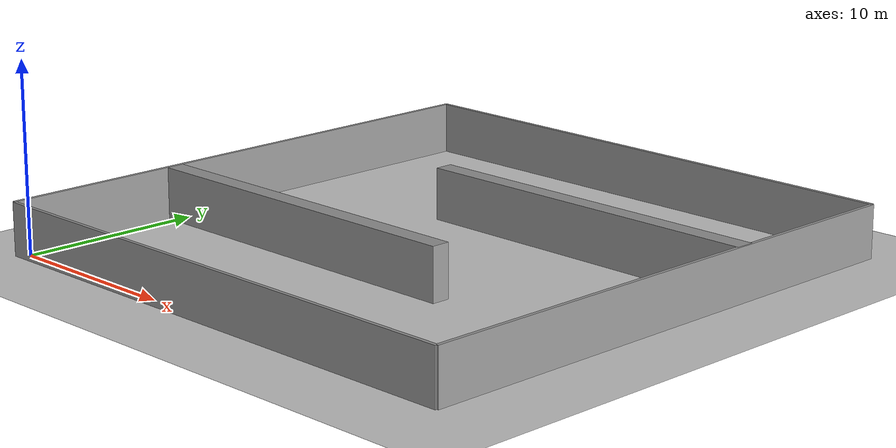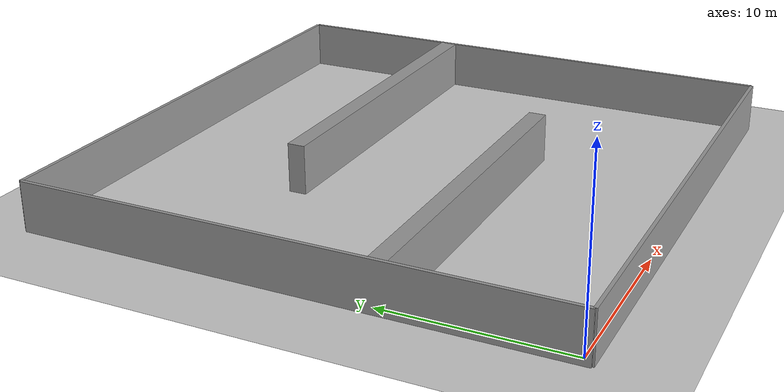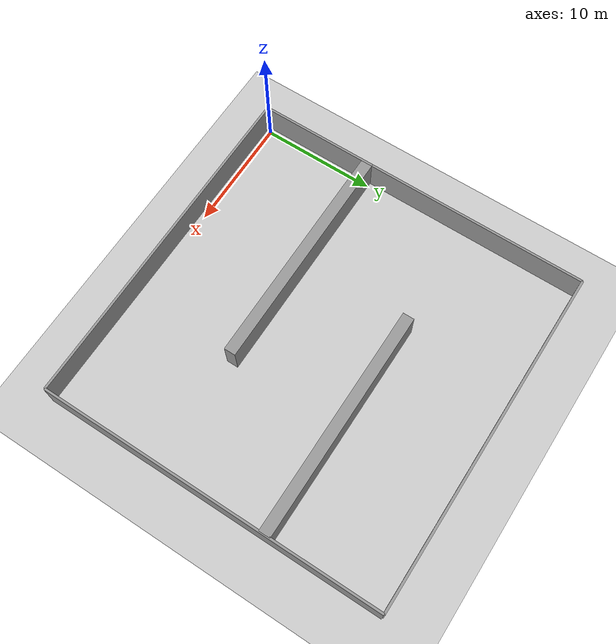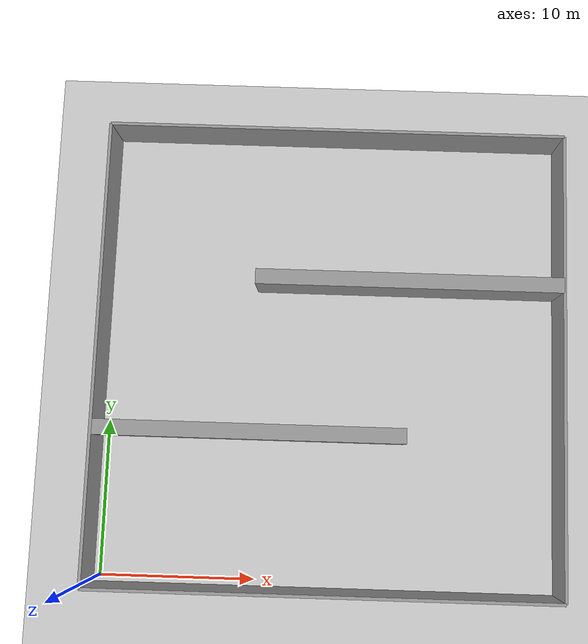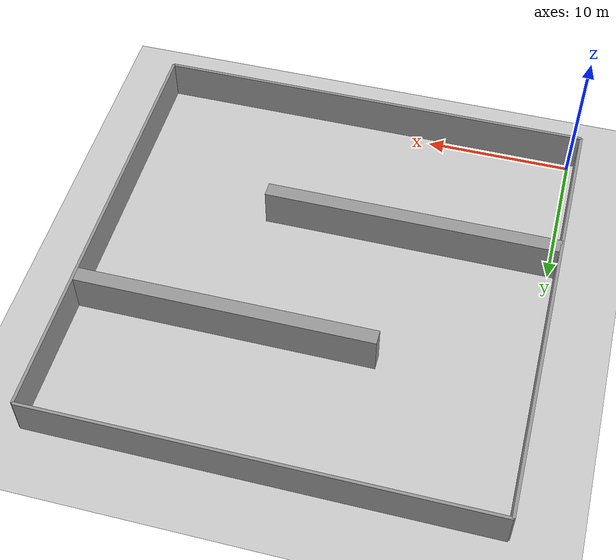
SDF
<?xml version="1.0" ?>

    <!-- this file is auto generated using pedsim_gazebo_plugin pkg -->
    <sdf version="1.5">
      <world name="default">

      <!-- Ground Plane -->

      <include>
        <uri>model://ground_plane</uri>
      </include>

      <include>
        <uri>model://sun</uri>
      </include>

     <model name='grey_wall_1'>
      <static>1</static>
      <link name='link'>

	  <pose frame=''>14.5 -0.5  1.4 0 0 0.0</pose>

        <collision name='collision'>
          <geometry>
            <box>

	     <size> 30.0 .2  2.8 </size>

      	   </box>
          </geometry>
          <max_contacts>10</max_contacts>
          <surface>
            <contact>
              <ode/>
            </contact>
            <bounce/>
            <friction>
              <torsional>
                <ode/>
              </torsional>
              <ode/>
            </friction>
          </surface>
        </collision>
        <visual name='visual'>
          <cast_shadows>0</cast_shadows>
          <geometry>
            <box>

	     <size> 30.0 .2  2.8 </size>

      	   </box>
       </geometry>
          <material>
            <script>
              <uri>model://grey_wall/materials/scripts</uri>
              <uri>model://grey_wall/materials/textures</uri>
              <name>vrc/grey_wall</name>
            </script>
          </material>
        </visual>
        <self_collide>0</self_collide>
        <enable_wind>0</enable_wind>
        <kinematic>0</kinematic>
      </link>
    </model>

     <model name='grey_wall_2'>
      <static>1</static>
      <link name='link'>

	  <pose frame=''>-0.5 14.5  1.4 0 0 1.57</pose>

        <collision name='collision'>
          <geometry>
            <box>

	     <size> 30.0 .2  2.8 </size>

      	   </box>
          </geometry>
          <max_contacts>10</max_contacts>
          <surface>
            <contact>
              <ode/>
            </contact>
            <bounce/>
            <friction>
              <torsional>
                <ode/>
              </torsional>
              <ode/>
            </friction>
          </surface>
        </collision>
        <visual name='visual'>
          <cast_shadows>0</cast_shadows>
          <geometry>
            <box>

	     <size> 30.0 .2  2.8 </size>

      	   </box>
       </geometry>
          <material>
            <script>
              <uri>model://grey_wall/materials/scripts</uri>
              <uri>model://grey_wall/materials/textures</uri>
              <name>vrc/grey_wall</name>
            </script>
          </material>
        </visual>
        <self_collide>0</self_collide>
        <enable_wind>0</enable_wind>
        <kinematic>0</kinematic>
      </link>
    </model>

     <model name='grey_wall_3'>
      <static>1</static>
      <link name='link'>

	  <pose frame=''>14.5 29.5  1.4 0 0 0.0</pose>

        <collision name='collision'>
          <geometry>
            <box>

	     <size> 30.0 .2  2.8 </size>

      	   </box>
          </geometry>
          <max_contacts>10</max_contacts>
          <surface>
            <contact>
              <ode/>
            </contact>
            <bounce/>
            <friction>
              <torsional>
                <ode/>
              </torsional>
              <ode/>
            </friction>
          </surface>
        </collision>
        <visual name='visual'>
          <cast_shadows>0</cast_shadows>
          <geometry>
            <box>

	     <size> 30.0 .2  2.8 </size>

      	   </box>
       </geometry>
          <material>
            <script>
              <uri>model://grey_wall/materials/scripts</uri>
              <uri>model://grey_wall/materials/textures</uri>
              <name>vrc/grey_wall</name>
            </script>
          </material>
        </visual>
        <self_collide>0</self_collide>
        <enable_wind>0</enable_wind>
        <kinematic>0</kinematic>
      </link>
    </model>

     <model name='grey_wall_4'>
      <static>1</static>
      <link name='link'>

	  <pose frame=''>29.5 14.5  1.4 0 0 1.57</pose>

        <collision name='collision'>
          <geometry>
            <box>

	     <size> 30.0 .2  2.8 </size>

      	   </box>
          </geometry>
          <max_contacts>10</max_contacts>
          <surface>
            <contact>
              <ode/>
            </contact>
            <bounce/>
            <friction>
              <torsional>
                <ode/>
              </torsional>
              <ode/>
            </friction>
          </surface>
        </collision>
        <visual name='visual'>
          <cast_shadows>0</cast_shadows>
          <geometry>
            <box>

	     <size> 30.0 .2  2.8 </size>

      	   </box>
       </geometry>
          <material>
            <script>
              <uri>model://grey_wall/materials/scripts</uri>
              <uri>model://grey_wall/materials/textures</uri>
              <name>vrc/grey_wall</name>
            </script>
          </material>
        </visual>
        <self_collide>0</self_collide>
        <enable_wind>0</enable_wind>
        <kinematic>0</kinematic>
      </link>
    </model>

    <model name='grey_corridor_1'>
      <static>1</static>
      <link name='link'>

	  <pose frame=''>9.5 9.5  1.4 0 0 0</pose>

        <collision name='collision'>
          <geometry>
            <box>

	     <size> 20.0 1  2.8 </size>

      	   </box>
          </geometry>
          <max_contacts>10</max_contacts>
          <surface>
            <contact>
              <ode/>
            </contact>
            <bounce/>
            <friction>
              <torsional>
                <ode/>
              </torsional>
              <ode/>
            </friction>
          </surface>
        </collision>
        <visual name='visual'>
          <cast_shadows>0</cast_shadows>
          <geometry>
            <box>

	     <size> 20.0 1  2.8 </size>

      	   </box>
       </geometry>
          <material>
            <script>
              <uri>model://grey_wall/materials/scripts</uri>
              <uri>model://grey_wall/materials/textures</uri>
              <name>vrc/grey_wall</name>
            </script>
          </material>
        </visual>
        <self_collide>0</self_collide>
        <enable_wind>0</enable_wind>
        <kinematic>0</kinematic>
      </link>
    </model>

    <model name='grey_corridor_2'>
      <static>1</static>
      <link name='link'>

	  <pose frame=''>19.5 19.5  1.4 0 0 0</pose>

        <collision name='collision'>
          <geometry>
            <box>

	     <size> 20.0 1  2.8 </size>

      	   </box>
          </geometry>
          <max_contacts>10</max_contacts>
          <surface>
            <contact>
              <ode/>
            </contact>
            <bounce/>
            <friction>
              <torsional>
                <ode/>
              </torsional>
              <ode/>
            </friction>
          </surface>
        </collision>
        <visual name='visual'>
          <cast_shadows>0</cast_shadows>
          <geometry>
            <box>

	     <size> 20.0 1  2.8 </size>

      	   </box>
       </geometry>
          <material>
            <script>
              <uri>model://grey_wall/materials/scripts</uri>
              <uri>model://grey_wall/materials/textures</uri>
              <name>vrc/grey_wall</name>
            </script>
          </material>
        </visual>
        <self_collide>0</self_collide>
        <enable_wind>0</enable_wind>
        <kinematic>0</kinematic>
      </link>
    </model>

    <plugin name="ActorPosesPlugin" filename="libActorPosesPlugin.so">
      </plugin>

      </world>
    </sdf>
